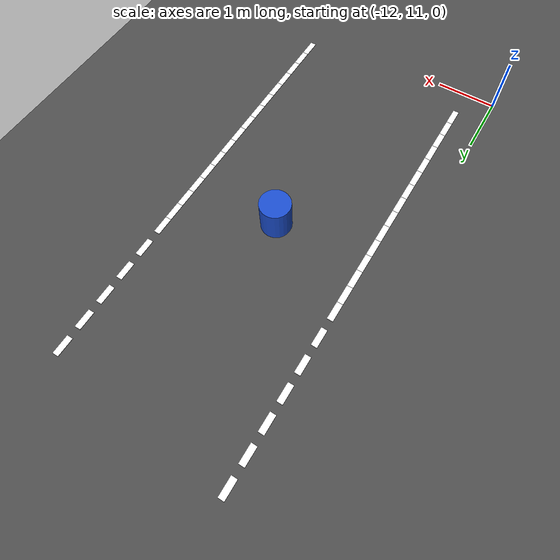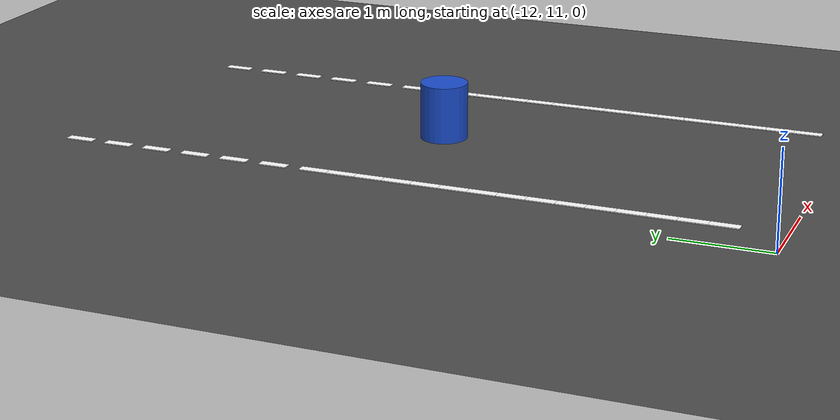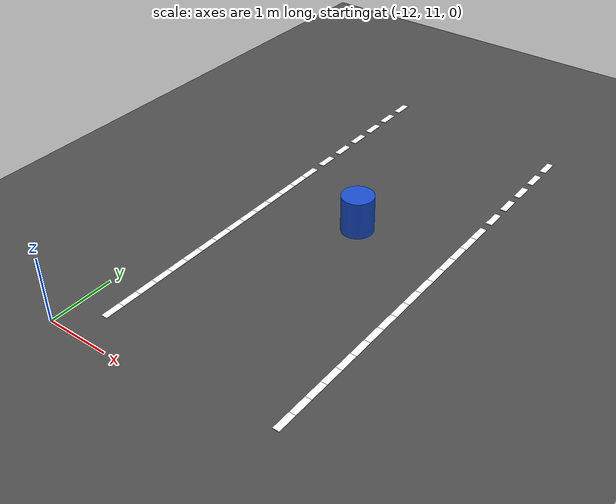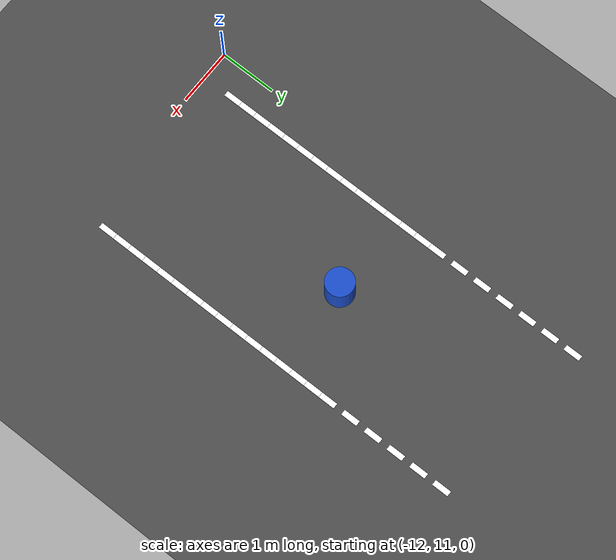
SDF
<sdf version="1.10">
 <world name="igvc_autonav">
  <model name="ground_plane">
   <static>true</static>
   <link name="link">
    <collision name="collision">
     <geometry><plane><normal>0 0 1</normal><size>60 60</size></plane></geometry>
     <surface><friction><ode><mu>0.80000000000000004</mu><mu2>0.80000000000000004</mu2></ode></friction></surface>
    </collision>
    <visual name="visual">
     <geometry><plane><normal>0 0 1</normal><size>60 60</size></plane></geometry>
     <material>
      <ambient>0.25 0.25 0.25 1</ambient>
      <diffuse>0.300000012 0.300000012 0.300000012 1</diffuse>
      <specular>0.100000001 0.100000001 0.100000001 1</specular>
     </material>
    </visual>
    <inertial>
     <mass>1</mass>
     <inertia><ixx>1</ixx><ixy>0</ixy><ixz>0</ixz><iyy>1</iyy><iyz>0</iyz><izz>1</izz></inertia>
    </inertial>
   </link>
  </model>
  <model name="lane_inner_135">
   <static>true</static>
   <pose>-8.5 18.199999999999999 0.01 0 0 -1.5708</pose>
   <link name="link">
    <visual name="visual">
     <geometry><box><size>0.29999999999999999 0.10000000000000001 0.01</size></box></geometry>
     <material><ambient>1 1 1 1</ambient><diffuse>1 1 1 1</diffuse><emissive>1 1 1 1</emissive></material>
    </visual>
    <inertial>
     <mass>1</mass>
     <inertia><ixx>1</ixx><ixy>0</ixy><ixz>0</ixz><iyy>1</iyy><iyz>0</iyz><izz>1</izz></inertia>
    </inertial>
   </link>
  </model>
  <model name="lane_inner_136">
   <static>true</static>
   <pose>-8.5 17.75 0.01 0 0 -1.5708</pose>
   <link name="link">
    <visual name="visual">
     <geometry><box><size>0.29999999999999999 0.10000000000000001 0.01</size></box></geometry>
     <material><ambient>1 1 1 1</ambient><diffuse>1 1 1 1</diffuse><emissive>1 1 1 1</emissive></material>
    </visual>
    <inertial>
     <mass>1</mass>
     <inertia><ixx>1</ixx><ixy>0</ixy><ixz>0</ixz><iyy>1</iyy><iyz>0</iyz><izz>1</izz></inertia>
    </inertial>
   </link>
  </model>
  <model name="lane_inner_137">
   <static>true</static>
   <pose>-8.5 17.300000000000001 0.01 0 0 -1.5708</pose>
   <link name="link">
    <visual name="visual">
     <geometry><box><size>0.29999999999999999 0.10000000000000001 0.01</size></box></geometry>
     <material><ambient>1 1 1 1</ambient><diffuse>1 1 1 1</diffuse><emissive>1 1 1 1</emissive></material>
    </visual>
    <inertial>
     <mass>1</mass>
     <inertia><ixx>1</ixx><ixy>0</ixy><ixz>0</ixz><iyy>1</iyy><iyz>0</iyz><izz>1</izz></inertia>
    </inertial>
   </link>
  </model>
  <model name="lane_inner_138">
   <static>true</static>
   <pose>-8.5 16.850000000000001 0.01 0 0 -1.5708</pose>
   <link name="link">
    <visual name="visual">
     <geometry><box><size>0.29999999999999999 0.10000000000000001 0.01</size></box></geometry>
     <material><ambient>1 1 1 1</ambient><diffuse>1 1 1 1</diffuse><emissive>1 1 1 1</emissive></material>
    </visual>
    <inertial>
     <mass>1</mass>
     <inertia><ixx>1</ixx><ixy>0</ixy><ixz>0</ixz><iyy>1</iyy><iyz>0</iyz><izz>1</izz></inertia>
    </inertial>
   </link>
  </model>
  <model name="lane_inner_139">
   <static>true</static>
   <pose>-8.5 16.399999999999999 0.01 0 0 -1.5708</pose>
   <link name="link">
    <visual name="visual">
     <geometry><box><size>0.29999999999999999 0.10000000000000001 0.01</size></box></geometry>
     <material><ambient>1 1 1 1</ambient><diffuse>1 1 1 1</diffuse><emissive>1 1 1 1</emissive></material>
    </visual>
    <inertial>
     <mass>1</mass>
     <inertia><ixx>1</ixx><ixy>0</ixy><ixz>0</ixz><iyy>1</iyy><iyz>0</iyz><izz>1</izz></inertia>
    </inertial>
   </link>
  </model>
  <model name="lane_inner_140">
   <static>true</static>
   <pose>-8.5 15.949999999999999 0.01 0 0 -1.5708</pose>
   <link name="link">
    <visual name="visual">
     <geometry><box><size>0.29999999999999999 0.10000000000000001 0.01</size></box></geometry>
     <material><ambient>1 1 1 1</ambient><diffuse>1 1 1 1</diffuse><emissive>1 1 1 1</emissive></material>
    </visual>
    <inertial>
     <mass>1</mass>
     <inertia><ixx>1</ixx><ixy>0</ixy><ixz>0</ixz><iyy>1</iyy><iyz>0</iyz><izz>1</izz></inertia>
    </inertial>
   </link>
  </model>
  <model name="lane_inner_141">
   <static>true</static>
   <pose>-8.5 15.65 0.01 0 0 -1.5708</pose>
   <link name="link">
    <visual name="visual">
     <geometry><box><size>0.29999999999999999 0.10000000000000001 0.01</size></box></geometry>
     <material><ambient>1 1 1 1</ambient><diffuse>1 1 1 1</diffuse><emissive>1 1 1 1</emissive></material>
    </visual>
    <inertial>
     <mass>1</mass>
     <inertia><ixx>1</ixx><ixy>0</ixy><ixz>0</ixz><iyy>1</iyy><iyz>0</iyz><izz>1</izz></inertia>
    </inertial>
   </link>
  </model>
  <model name="lane_inner_142">
   <static>true</static>
   <pose>-8.5 15.35 0.01 0 0 -1.5708</pose>
   <link name="link">
    <visual name="visual">
     <geometry><box><size>0.29999999999999999 0.10000000000000001 0.01</size></box></geometry>
     <material><ambient>1 1 1 1</ambient><diffuse>1 1 1 1</diffuse><emissive>1 1 1 1</emissive></material>
    </visual>
    <inertial>
     <mass>1</mass>
     <inertia><ixx>1</ixx><ixy>0</ixy><ixz>0</ixz><iyy>1</iyy><iyz>0</iyz><izz>1</izz></inertia>
    </inertial>
   </link>
  </model>
  <model name="lane_inner_143">
   <static>true</static>
   <pose>-8.5 15.050000000000001 0.01 0 0 -1.5708</pose>
   <link name="link">
    <visual name="visual">
     <geometry><box><size>0.29999999999999999 0.10000000000000001 0.01</size></box></geometry>
     <material><ambient>1 1 1 1</ambient><diffuse>1 1 1 1</diffuse><emissive>1 1 1 1</emissive></material>
    </visual>
    <inertial>
     <mass>1</mass>
     <inertia><ixx>1</ixx><ixy>0</ixy><ixz>0</ixz><iyy>1</iyy><iyz>0</iyz><izz>1</izz></inertia>
    </inertial>
   </link>
  </model>
  <model name="lane_inner_144">
   <static>true</static>
   <pose>-8.5 14.75 0.01 0 0 -1.5708</pose>
   <link name="link">
    <visual name="visual">
     <geometry><box><size>0.29999999999999999 0.10000000000000001 0.01</size></box></geometry>
     <material><ambient>1 1 1 1</ambient><diffuse>1 1 1 1</diffuse><emissive>1 1 1 1</emissive></material>
    </visual>
    <inertial>
     <mass>1</mass>
     <inertia><ixx>1</ixx><ixy>0</ixy><ixz>0</ixz><iyy>1</iyy><iyz>0</iyz><izz>1</izz></inertia>
    </inertial>
   </link>
  </model>
  <model name="lane_inner_145">
   <static>true</static>
   <pose>-8.5 14.449999999999999 0.01 0 0 -1.5708</pose>
   <link name="link">
    <visual name="visual">
     <geometry><box><size>0.29999999999999999 0.10000000000000001 0.01</size></box></geometry>
     <material><ambient>1 1 1 1</ambient><diffuse>1 1 1 1</diffuse><emissive>1 1 1 1</emissive></material>
    </visual>
    <inertial>
     <mass>1</mass>
     <inertia><ixx>1</ixx><ixy>0</ixy><ixz>0</ixz><iyy>1</iyy><iyz>0</iyz><izz>1</izz></inertia>
    </inertial>
   </link>
  </model>
  <model name="lane_inner_146">
   <static>true</static>
   <pose>-8.5 14.15 0.01 0 0 -1.5708</pose>
   <link name="link">
    <visual name="visual">
     <geometry><box><size>0.29999999999999999 0.10000000000000001 0.01</size></box></geometry>
     <material><ambient>1 1 1 1</ambient><diffuse>1 1 1 1</diffuse><emissive>1 1 1 1</emissive></material>
    </visual>
    <inertial>
     <mass>1</mass>
     <inertia><ixx>1</ixx><ixy>0</ixy><ixz>0</ixz><iyy>1</iyy><iyz>0</iyz><izz>1</izz></inertia>
    </inertial>
   </link>
  </model>
  <model name="lane_inner_147">
   <static>true</static>
   <pose>-8.5 13.85 0.01 0 0 -1.5708</pose>
   <link name="link">
    <visual name="visual">
     <geometry><box><size>0.29999999999999999 0.10000000000000001 0.01</size></box></geometry>
     <material><ambient>1 1 1 1</ambient><diffuse>1 1 1 1</diffuse><emissive>1 1 1 1</emissive></material>
    </visual>
    <inertial>
     <mass>1</mass>
     <inertia><ixx>1</ixx><ixy>0</ixy><ixz>0</ixz><iyy>1</iyy><iyz>0</iyz><izz>1</izz></inertia>
    </inertial>
   </link>
  </model>
  <model name="lane_inner_148">
   <static>true</static>
   <pose>-8.5 13.550000000000001 0.01 0 0 -1.5708</pose>
   <link name="link">
    <visual name="visual">
     <geometry><box><size>0.29999999999999999 0.10000000000000001 0.01</size></box></geometry>
     <material><ambient>1 1 1 1</ambient><diffuse>1 1 1 1</diffuse><emissive>1 1 1 1</emissive></material>
    </visual>
    <inertial>
     <mass>1</mass>
     <inertia><ixx>1</ixx><ixy>0</ixy><ixz>0</ixz><iyy>1</iyy><iyz>0</iyz><izz>1</izz></inertia>
    </inertial>
   </link>
  </model>
  <model name="lane_inner_149">
   <static>true</static>
   <pose>-8.5 13.25 0.01 0 0 -1.5708</pose>
   <link name="link">
    <visual name="visual">
     <geometry><box><size>0.29999999999999999 0.10000000000000001 0.01</size></box></geometry>
     <material><ambient>1 1 1 1</ambient><diffuse>1 1 1 1</diffuse><emissive>1 1 1 1</emissive></material>
    </visual>
    <inertial>
     <mass>1</mass>
     <inertia><ixx>1</ixx><ixy>0</ixy><ixz>0</ixz><iyy>1</iyy><iyz>0</iyz><izz>1</izz></inertia>
    </inertial>
   </link>
  </model>
  <model name="lane_inner_150">
   <static>true</static>
   <pose>-8.5 12.949999999999999 0.01 0 0 -1.5708</pose>
   <link name="link">
    <visual name="visual">
     <geometry><box><size>0.29999999999999999 0.10000000000000001 0.01</size></box></geometry>
     <material><ambient>1 1 1 1</ambient><diffuse>1 1 1 1</diffuse><emissive>1 1 1 1</emissive></material>
    </visual>
    <inertial>
     <mass>1</mass>
     <inertia><ixx>1</ixx><ixy>0</ixy><ixz>0</ixz><iyy>1</iyy><iyz>0</iyz><izz>1</izz></inertia>
    </inertial>
   </link>
  </model>
  <model name="lane_inner_151">
   <static>true</static>
   <pose>-8.5 12.65 0.01 0 0 -1.5708</pose>
   <link name="link">
    <visual name="visual">
     <geometry><box><size>0.29999999999999999 0.10000000000000001 0.01</size></box></geometry>
     <material><ambient>1 1 1 1</ambient><diffuse>1 1 1 1</diffuse><emissive>1 1 1 1</emissive></material>
    </visual>
    <inertial>
     <mass>1</mass>
     <inertia><ixx>1</ixx><ixy>0</ixy><ixz>0</ixz><iyy>1</iyy><iyz>0</iyz><izz>1</izz></inertia>
    </inertial>
   </link>
  </model>
  <model name="lane_inner_152">
   <static>true</static>
   <pose>-8.5 12.35 0.01 0 0 -1.5708</pose>
   <link name="link">
    <visual name="visual">
     <geometry><box><size>0.29999999999999999 0.10000000000000001 0.01</size></box></geometry>
     <material><ambient>1 1 1 1</ambient><diffuse>1 1 1 1</diffuse><emissive>1 1 1 1</emissive></material>
    </visual>
    <inertial>
     <mass>1</mass>
     <inertia><ixx>1</ixx><ixy>0</ixy><ixz>0</ixz><iyy>1</iyy><iyz>0</iyz><izz>1</izz></inertia>
    </inertial>
   </link>
  </model>
  <model name="lane_inner_153">
   <static>true</static>
   <pose>-8.5 12.050000000000001 0.01 0 0 -1.5708</pose>
   <link name="link">
    <visual name="visual">
     <geometry><box><size>0.29999999999999999 0.10000000000000001 0.01</size></box></geometry>
     <material><ambient>1 1 1 1</ambient><diffuse>1 1 1 1</diffuse><emissive>1 1 1 1</emissive></material>
    </visual>
    <inertial>
     <mass>1</mass>
     <inertia><ixx>1</ixx><ixy>0</ixy><ixz>0</ixz><iyy>1</iyy><iyz>0</iyz><izz>1</izz></inertia>
    </inertial>
   </link>
  </model>
  <model name="lane_inner_154">
   <static>true</static>
   <pose>-8.5 11.75 0.01 0 0 -1.5708</pose>
   <link name="link">
    <visual name="visual">
     <geometry><box><size>0.29999999999999999 0.10000000000000001 0.01</size></box></geometry>
     <material><ambient>1 1 1 1</ambient><diffuse>1 1 1 1</diffuse><emissive>1 1 1 1</emissive></material>
    </visual>
    <inertial>
     <mass>1</mass>
     <inertia><ixx>1</ixx><ixy>0</ixy><ixz>0</ixz><iyy>1</iyy><iyz>0</iyz><izz>1</izz></inertia>
    </inertial>
   </link>
  </model>
  <model name="lane_inner_155">
   <static>true</static>
   <pose>-8.5 11.449999999999999 0.01 0 0 -1.5708</pose>
   <link name="link">
    <visual name="visual">
     <geometry><box><size>0.29999999999999999 0.10000000000000001 0.01</size></box></geometry>
     <material><ambient>1 1 1 1</ambient><diffuse>1 1 1 1</diffuse><emissive>1 1 1 1</emissive></material>
    </visual>
    <inertial>
     <mass>1</mass>
     <inertia><ixx>1</ixx><ixy>0</ixy><ixz>0</ixz><iyy>1</iyy><iyz>0</iyz><izz>1</izz></inertia>
    </inertial>
   </link>
  </model>
  <model name="lane_outer_167">
   <static>true</static>
   <pose>-11.5 18.5 0.01 0 0 -1.5708</pose>
   <link name="link">
    <visual name="visual">
     <geometry><box><size>0.29999999999999999 0.10000000000000001 0.01</size></box></geometry>
     <material><ambient>1 1 1 1</ambient><diffuse>1 1 1 1</diffuse><emissive>1 1 1 1</emissive></material>
    </visual>
    <inertial>
     <mass>1</mass>
     <inertia><ixx>1</ixx><ixy>0</ixy><ixz>0</ixz><iyy>1</iyy><iyz>0</iyz><izz>1</izz></inertia>
    </inertial>
   </link>
  </model>
  <model name="lane_outer_168">
   <static>true</static>
   <pose>-11.5 18.050000000000001 0.01 0 0 -1.5708</pose>
   <link name="link">
    <visual name="visual">
     <geometry><box><size>0.29999999999999999 0.10000000000000001 0.01</size></box></geometry>
     <material><ambient>1 1 1 1</ambient><diffuse>1 1 1 1</diffuse><emissive>1 1 1 1</emissive></material>
    </visual>
    <inertial>
     <mass>1</mass>
     <inertia><ixx>1</ixx><ixy>0</ixy><ixz>0</ixz><iyy>1</iyy><iyz>0</iyz><izz>1</izz></inertia>
    </inertial>
   </link>
  </model>
  <model name="lane_outer_169">
   <static>true</static>
   <pose>-11.5 17.600000000000001 0.01 0 0 -1.5708</pose>
   <link name="link">
    <visual name="visual">
     <geometry><box><size>0.29999999999999999 0.10000000000000001 0.01</size></box></geometry>
     <material><ambient>1 1 1 1</ambient><diffuse>1 1 1 1</diffuse><emissive>1 1 1 1</emissive></material>
    </visual>
    <inertial>
     <mass>1</mass>
     <inertia><ixx>1</ixx><ixy>0</ixy><ixz>0</ixz><iyy>1</iyy><iyz>0</iyz><izz>1</izz></inertia>
    </inertial>
   </link>
  </model>
  <model name="lane_outer_170">
   <static>true</static>
   <pose>-11.5 17.149999999999999 0.01 0 0 -1.5708</pose>
   <link name="link">
    <visual name="visual">
     <geometry><box><size>0.29999999999999999 0.10000000000000001 0.01</size></box></geometry>
     <material><ambient>1 1 1 1</ambient><diffuse>1 1 1 1</diffuse><emissive>1 1 1 1</emissive></material>
    </visual>
    <inertial>
     <mass>1</mass>
     <inertia><ixx>1</ixx><ixy>0</ixy><ixz>0</ixz><iyy>1</iyy><iyz>0</iyz><izz>1</izz></inertia>
    </inertial>
   </link>
  </model>
  <model name="lane_outer_171">
   <static>true</static>
   <pose>-11.5 16.699999999999999 0.01 0 0 -1.5708</pose>
   <link name="link">
    <visual name="visual">
     <geometry><box><size>0.29999999999999999 0.10000000000000001 0.01</size></box></geometry>
     <material><ambient>1 1 1 1</ambient><diffuse>1 1 1 1</diffuse><emissive>1 1 1 1</emissive></material>
    </visual>
    <inertial>
     <mass>1</mass>
     <inertia><ixx>1</ixx><ixy>0</ixy><ixz>0</ixz><iyy>1</iyy><iyz>0</iyz><izz>1</izz></inertia>
    </inertial>
   </link>
  </model>
  <model name="lane_outer_172">
   <static>true</static>
   <pose>-11.5 16.25 0.01 0 0 -1.5708</pose>
   <link name="link">
    <visual name="visual">
     <geometry><box><size>0.29999999999999999 0.10000000000000001 0.01</size></box></geometry>
     <material><ambient>1 1 1 1</ambient><diffuse>1 1 1 1</diffuse><emissive>1 1 1 1</emissive></material>
    </visual>
    <inertial>
     <mass>1</mass>
     <inertia><ixx>1</ixx><ixy>0</ixy><ixz>0</ixz><iyy>1</iyy><iyz>0</iyz><izz>1</izz></inertia>
    </inertial>
   </link>
  </model>
  <model name="lane_outer_173">
   <static>true</static>
   <pose>-11.5 15.800000000000001 0.01 0 0 -1.5708</pose>
   <link name="link">
    <visual name="visual">
     <geometry><box><size>0.29999999999999999 0.10000000000000001 0.01</size></box></geometry>
     <material><ambient>1 1 1 1</ambient><diffuse>1 1 1 1</diffuse><emissive>1 1 1 1</emissive></material>
    </visual>
    <inertial>
     <mass>1</mass>
     <inertia><ixx>1</ixx><ixy>0</ixy><ixz>0</ixz><iyy>1</iyy><iyz>0</iyz><izz>1</izz></inertia>
    </inertial>
   </link>
  </model>
  <model name="lane_outer_174">
   <static>true</static>
   <pose>-11.5 15.5 0.01 0 0 -1.5708</pose>
   <link name="link">
    <visual name="visual">
     <geometry><box><size>0.29999999999999999 0.10000000000000001 0.01</size></box></geometry>
     <material><ambient>1 1 1 1</ambient><diffuse>1 1 1 1</diffuse><emissive>1 1 1 1</emissive></material>
    </visual>
    <inertial>
     <mass>1</mass>
     <inertia><ixx>1</ixx><ixy>0</ixy><ixz>0</ixz><iyy>1</iyy><iyz>0</iyz><izz>1</izz></inertia>
    </inertial>
   </link>
  </model>
  <model name="lane_outer_175">
   <static>true</static>
   <pose>-11.5 15.199999999999999 0.01 0 0 -1.5708</pose>
   <link name="link">
    <visual name="visual">
     <geometry><box><size>0.29999999999999999 0.10000000000000001 0.01</size></box></geometry>
     <material><ambient>1 1 1 1</ambient><diffuse>1 1 1 1</diffuse><emissive>1 1 1 1</emissive></material>
    </visual>
    <inertial>
     <mass>1</mass>
     <inertia><ixx>1</ixx><ixy>0</ixy><ixz>0</ixz><iyy>1</iyy><iyz>0</iyz><izz>1</izz></inertia>
    </inertial>
   </link>
  </model>
  <model name="lane_outer_176">
   <static>true</static>
   <pose>-11.5 14.9 0.01 0 0 -1.5708</pose>
   <link name="link">
    <visual name="visual">
     <geometry><box><size>0.29999999999999999 0.10000000000000001 0.01</size></box></geometry>
     <material><ambient>1 1 1 1</ambient><diffuse>1 1 1 1</diffuse><emissive>1 1 1 1</emissive></material>
    </visual>
    <inertial>
     <mass>1</mass>
     <inertia><ixx>1</ixx><ixy>0</ixy><ixz>0</ixz><iyy>1</iyy><iyz>0</iyz><izz>1</izz></inertia>
    </inertial>
   </link>
  </model>
  <model name="lane_outer_177">
   <static>true</static>
   <pose>-11.5 14.6 0.01 0 0 -1.5708</pose>
   <link name="link">
    <visual name="visual">
     <geometry><box><size>0.29999999999999999 0.10000000000000001 0.01</size></box></geometry>
     <material><ambient>1 1 1 1</ambient><diffuse>1 1 1 1</diffuse><emissive>1 1 1 1</emissive></material>
    </visual>
    <inertial>
     <mass>1</mass>
     <inertia><ixx>1</ixx><ixy>0</ixy><ixz>0</ixz><iyy>1</iyy><iyz>0</iyz><izz>1</izz></inertia>
    </inertial>
   </link>
  </model>
  <model name="lane_outer_178">
   <static>true</static>
   <pose>-11.5 14.300000000000001 0.01 0 0 -1.5708</pose>
   <link name="link">
    <visual name="visual">
     <geometry><box><size>0.29999999999999999 0.10000000000000001 0.01</size></box></geometry>
     <material><ambient>1 1 1 1</ambient><diffuse>1 1 1 1</diffuse><emissive>1 1 1 1</emissive></material>
    </visual>
    <inertial>
     <mass>1</mass>
     <inertia><ixx>1</ixx><ixy>0</ixy><ixz>0</ixz><iyy>1</iyy><iyz>0</iyz><izz>1</izz></inertia>
    </inertial>
   </link>
  </model>
  <model name="lane_outer_179">
   <static>true</static>
   <pose>-11.5 14 0.01 0 0 -1.5708</pose>
   <link name="link">
    <visual name="visual">
     <geometry><box><size>0.29999999999999999 0.10000000000000001 0.01</size></box></geometry>
     <material><ambient>1 1 1 1</ambient><diffuse>1 1 1 1</diffuse><emissive>1 1 1 1</emissive></material>
    </visual>
    <inertial>
     <mass>1</mass>
     <inertia><ixx>1</ixx><ixy>0</ixy><ixz>0</ixz><iyy>1</iyy><iyz>0</iyz><izz>1</izz></inertia>
    </inertial>
   </link>
  </model>
  <model name="lane_outer_180">
   <static>true</static>
   <pose>-11.5 13.699999999999999 0.01 0 0 -1.5708</pose>
   <link name="link">
    <visual name="visual">
     <geometry><box><size>0.29999999999999999 0.10000000000000001 0.01</size></box></geometry>
     <material><ambient>1 1 1 1</ambient><diffuse>1 1 1 1</diffuse><emissive>1 1 1 1</emissive></material>
    </visual>
    <inertial>
     <mass>1</mass>
     <inertia><ixx>1</ixx><ixy>0</ixy><ixz>0</ixz><iyy>1</iyy><iyz>0</iyz><izz>1</izz></inertia>
    </inertial>
   </link>
  </model>
  <model name="lane_outer_181">
   <static>true</static>
   <pose>-11.5 13.4 0.01 0 0 -1.5708</pose>
   <link name="link">
    <visual name="visual">
     <geometry><box><size>0.29999999999999999 0.10000000000000001 0.01</size></box></geometry>
     <material><ambient>1 1 1 1</ambient><diffuse>1 1 1 1</diffuse><emissive>1 1 1 1</emissive></material>
    </visual>
    <inertial>
     <mass>1</mass>
     <inertia><ixx>1</ixx><ixy>0</ixy><ixz>0</ixz><iyy>1</iyy><iyz>0</iyz><izz>1</izz></inertia>
    </inertial>
   </link>
  </model>
  <model name="lane_outer_182">
   <static>true</static>
   <pose>-11.5 13.1 0.01 0 0 -1.5708</pose>
   <link name="link">
    <visual name="visual">
     <geometry><box><size>0.29999999999999999 0.10000000000000001 0.01</size></box></geometry>
     <material><ambient>1 1 1 1</ambient><diffuse>1 1 1 1</diffuse><emissive>1 1 1 1</emissive></material>
    </visual>
    <inertial>
     <mass>1</mass>
     <inertia><ixx>1</ixx><ixy>0</ixy><ixz>0</ixz><iyy>1</iyy><iyz>0</iyz><izz>1</izz></inertia>
    </inertial>
   </link>
  </model>
  <model name="lane_outer_183">
   <static>true</static>
   <pose>-11.5 12.800000000000001 0.01 0 0 -1.5708</pose>
   <link name="link">
    <visual name="visual">
     <geometry><box><size>0.29999999999999999 0.10000000000000001 0.01</size></box></geometry>
     <material><ambient>1 1 1 1</ambient><diffuse>1 1 1 1</diffuse><emissive>1 1 1 1</emissive></material>
    </visual>
    <inertial>
     <mass>1</mass>
     <inertia><ixx>1</ixx><ixy>0</ixy><ixz>0</ixz><iyy>1</iyy><iyz>0</iyz><izz>1</izz></inertia>
    </inertial>
   </link>
  </model>
  <model name="lane_outer_184">
   <static>true</static>
   <pose>-11.5 12.5 0.01 0 0 -1.5708</pose>
   <link name="link">
    <visual name="visual">
     <geometry><box><size>0.29999999999999999 0.10000000000000001 0.01</size></box></geometry>
     <material><ambient>1 1 1 1</ambient><diffuse>1 1 1 1</diffuse><emissive>1 1 1 1</emissive></material>
    </visual>
    <inertial>
     <mass>1</mass>
     <inertia><ixx>1</ixx><ixy>0</ixy><ixz>0</ixz><iyy>1</iyy><iyz>0</iyz><izz>1</izz></inertia>
    </inertial>
   </link>
  </model>
  <model name="lane_outer_185">
   <static>true</static>
   <pose>-11.5 12.199999999999999 0.01 0 0 -1.5708</pose>
   <link name="link">
    <visual name="visual">
     <geometry><box><size>0.29999999999999999 0.10000000000000001 0.01</size></box></geometry>
     <material><ambient>1 1 1 1</ambient><diffuse>1 1 1 1</diffuse><emissive>1 1 1 1</emissive></material>
    </visual>
    <inertial>
     <mass>1</mass>
     <inertia><ixx>1</ixx><ixy>0</ixy><ixz>0</ixz><iyy>1</iyy><iyz>0</iyz><izz>1</izz></inertia>
    </inertial>
   </link>
  </model>
  <model name="lane_outer_186">
   <static>true</static>
   <pose>-11.5 11.9 0.01 0 0 -1.5708</pose>
   <link name="link">
    <visual name="visual">
     <geometry><box><size>0.29999999999999999 0.10000000000000001 0.01</size></box></geometry>
     <material><ambient>1 1 1 1</ambient><diffuse>1 1 1 1</diffuse><emissive>1 1 1 1</emissive></material>
    </visual>
    <inertial>
     <mass>1</mass>
     <inertia><ixx>1</ixx><ixy>0</ixy><ixz>0</ixz><iyy>1</iyy><iyz>0</iyz><izz>1</izz></inertia>
    </inertial>
   </link>
  </model>
  <model name="lane_outer_187">
   <static>true</static>
   <pose>-11.5 11.6 0.01 0 0 -1.5708</pose>
   <link name="link">
    <visual name="visual">
     <geometry><box><size>0.29999999999999999 0.10000000000000001 0.01</size></box></geometry>
     <material><ambient>1 1 1 1</ambient><diffuse>1 1 1 1</diffuse><emissive>1 1 1 1</emissive></material>
    </visual>
    <inertial>
     <mass>1</mass>
     <inertia><ixx>1</ixx><ixy>0</ixy><ixz>0</ixz><iyy>1</iyy><iyz>0</iyz><izz>1</izz></inertia>
    </inertial>
   </link>
  </model>
  <model name="barrel_1">
   <static>true</static>
   <link name="link">
    <collision name="collision">
     <geometry><cylinder><radius>0.25</radius><length>0.59999999999999998</length></cylinder></geometry>
     <pose>0 0 0.29999999999999999 0 0 0</pose>
    </collision>
    <visual name="visual">
     <geometry><cylinder><radius>0.25</radius><length>0.59999999999999998</length></cylinder></geometry>
     <pose>0 0 0.29999999999999999 0 0 0</pose>
     <material>
      <ambient>0.100000001 0.300000012 0.800000012 1</ambient>
      <diffuse>0.100000001 0.300000012 0.800000012 1</diffuse>
      <specular>0.300000012 0.300000012 0.300000012 1</specular>
     </material>
    </visual>
    <inertial>
     <mass>1</mass>
     <inertia><ixx>1</ixx><ixy>0</ixy><ixz>0</ixz><iyy>1</iyy><iyz>0</iyz><izz>1</izz></inertia>
    </inertial>
   </link>
   <pose>-10 15 0 0 0 0</pose>
  </model>
 </world>
</sdf>
